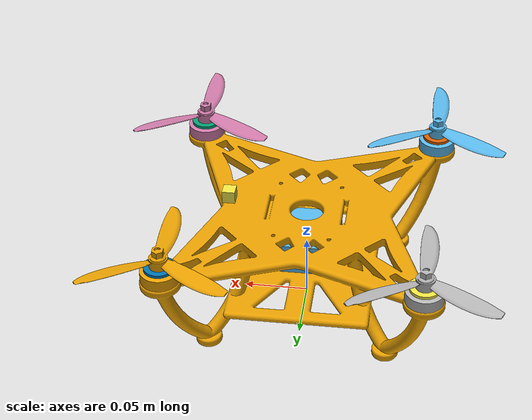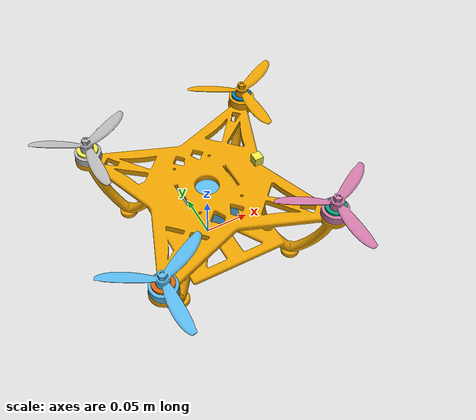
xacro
<?xml version="1.0"?>
<robot xmlns:xacro = "http://www.ros.org/wiki/xacro" name="quadrotor/quadrotor">

    <xacro:macro name="frame_inertia">
        <inertia ixx="1.231E-04" ixy="-3.560E-08" ixz="4.131E-07"
                 iyy="1.218E-04" iyz="4.210E-07"
                 izz="1.942E-04" />
    </xacro:macro>

    <xacro:macro name="propellers_holder_inertia">
        <inertia ixx="0.00" ixy="0.00" ixz="0.00"
                 iyy="0.00" iyz="0.00"
                 izz="0.00" />
    </xacro:macro>

    <xacro:macro name="propellers_inertia">
        <inertia ixx="3.962E-06" ixy="0.00" ixz="-8.233E-10"
                 iyy="6.100E-06" iyz="0.00"
                 izz="6.716E-06" />
    </xacro:macro>

    <xacro:macro name="box_inertia" params="m h w d">
        <inertia  ixx="${m*((h*h)+(d*d))/12}" ixy = "0" ixz = "0"
                iyy="${m*((w*w)+(d*d))/12}" iyz = "0"
                izz="${m*((h*h)+(w*w))/12}" />
    </xacro:macro>

    <xacro:property name="PI" value="3.1415926535897931" />
    <xacro:property name="frame_file_path" value="$(find quad_sim)/urdf/meshes/final_frame.stl" />
    <xacro:property name="propeller_base_file_path" value="$(find quad_sim)/urdf/meshes/KV2540_Motor_Base.stl" />
    <xacro:property name="propeller_file_path" value="$(find quad_sim)/urdf/meshes/KV2540_Motor_Propeller_holder.stl" />

    <xacro:macro name="propeller_holder_link" params="name">
        <link name="${name}">
            <inertial>
                <mass value="0.01696" />
                <origin xyz="0 0 0" rpy="0 0 0" />
                <xacro:propellers_holder_inertia />
            </inertial>
            <visual>
                <origin xyz="0 0 0" rpy="0 0 0" />
                <geometry>
                    <mesh filename="${propeller_base_file_path}" scale="0.001 0.001 0.001" />
                </geometry>
            </visual>
            <collision>
                <origin xyz="0 0 0" rpy="0 0 0" />
                <geometry>
                    <mesh filename="${propeller_base_file_path}" scale="0.001 0.001 0.001" />
                </geometry>
            </collision>
        </link>
    </xacro:macro>

    <xacro:macro name="propeller_link" params="name">
        <link name="${name}">
            <inertial>
                <mass value="0.01696" />
                <origin xyz="0 0 0" rpy="0 0 0" />
                <xacro:propellers_inertia />
            </inertial>
            <visual>
                <origin xyz="0 0 0" rpy="0 0 0" />
                <geometry>
                    <mesh filename="${propeller_file_path}" scale="0.001 0.001 0.001" />
                </geometry>
            </visual>
            <collision>
                <origin xyz="0 0 0" rpy="0 0 0" />
                <geometry>
                    <mesh filename="${propeller_file_path}" scale="0.001 0.001 0.001" />
                </geometry>
            </collision>
        </link>
    </xacro:macro>

    <link name="frame">
        <inertial>
            <mass value="0.06" />
            <origin xyz="0 0 0" rpy="0 0 0" />
            <xacro:box_inertia m="0.06" h="0.001" w="0.001" d="0.005" />
        </inertial>
        <visual>
            <origin xyz="-0.11 0.11 0" rpy="${PI/2} 0 0" />
            <geometry>
                <mesh filename="${frame_file_path}" scale="0.001 0.001 0.001" />
            </geometry>
        </visual>
        <collision>
            <origin xyz="-0.11 0.11 0" rpy="${PI/2} 0 0" />
            <geometry>
                <mesh filename="${frame_file_path}" scale="0.001 0.001 0.001" />
            </geometry>
        </collision>
    </link>

    <link name="obj_load">
        <inertial>
            <mass value="0.6" />
            <origin xyz="0 0 0" rpy="0 0 0" />
            <xacro:box_inertia m="0.6" h="0.05" w="0.025" d="0.05" />
        </inertial>
        <visual>
            <origin xyz="0 0 0" rpy="0 0 0" />
            <geometry>
                <box size="0.05 0.05 0.025" />
            </geometry>
        </visual>
        <collision>
            <origin xyz="0 0 0" rpy="0 0 0" />
            <geometry>
                <box size="0.05 0.05 0.025" />
            </geometry>
        </collision>
    </link>

    <joint name="body_load" type="fixed">
        <origin xyz="0 0 0.05" rpy="0 0 0" />
        <parent link="frame" />
        <child link="obj_load" />
    </joint>

    <xacro:propeller_holder_link name="propeller_holder1"/>

    <joint name="body_propeller1" type="fixed">
        <origin xyz="0.095 -0.095 0.08" rpy="${PI/2} 0 0" />
        <parent link="frame" />
        <child link="propeller_holder1" />
    </joint>

    <xacro:propeller_holder_link name="propeller_holder2" />

    <joint name="body_propeller2" type="fixed">
        <origin xyz="-0.095 0.095 0.08" rpy="${PI/2} 0 0" />
        <parent link="frame" />
        <child link="propeller_holder2" />
    </joint>

    <xacro:propeller_holder_link name="propeller_holder3" />

    <joint name="body_propeller3" type="fixed">
        <origin xyz="0.095 0.095 0.08" rpy="${PI/2} 0 0" />
        <parent link="frame" />
        <child link="propeller_holder3" />
    </joint>

    <xacro:propeller_holder_link name="propeller_holder4" />

    <joint name="body_propeller4" type="fixed">
        <origin xyz="-0.095 -0.095 0.08" rpy="${PI/2} 0 0" />
        <parent link="frame" />
        <child link="propeller_holder4" />
    </joint>

    <xacro:propeller_link name="propeller1"/>

    <joint name="propeller_base_propeller1" type="continuous">
        <origin xyz="0.095 -0.095 0.081" rpy="${PI/2} 0 0" />
        <parent link="frame" />
        <child link="propeller1" />
        <axis xyz="0 1 0" />
        <dynamics damping="0.0004" friction="0.00"/>
    </joint>

    <xacro:propeller_link name="propeller2" />

    <joint name="propeller_base_propeller2" type="continuous">
        <origin xyz="-0.095 0.095 0.081" rpy="${PI/2} 0 0" />
        <parent link="frame" />
        <child link="propeller2" />
        <axis xyz="0 1 0" />
        <dynamics damping="0.0004" friction="0.00"/>
    </joint>

    <xacro:propeller_link name="propeller3" />
1
    <joint name="propeller_base_propeller3" type="continuous">
        <origin xyz="0.095 0.095 0.081" rpy="${PI/2} 0 0" />
        <parent link="frame" />
        <child link="propeller3" />
        <axis xyz="0 1 0" />
        <dynamics damping="0.0004" friction="0.00"/>
    </joint>

    <xacro:propeller_link name="propeller4" />

    <joint name="propeller_base_propeller4" type="continuous">
        <origin xyz="-0.095 -0.095 0.081" rpy="${PI/2} 0 0" />
        <parent link="frame" />
        <child link="propeller4" />
        <axis xyz="0 1 0" />
        <dynamics damping="0.0004" friction="0.00"/>
    </joint>

    <gazebo>
        <plugin name="success_quad_velocity_control_plugins" filename="libsuccess_quad_velocity_control_plugins.so">
            <robotNamespace>quadrotor</robotNamespace>
            <propeller1_link>propeller1</propeller1_link>
            <propeller2_link>propeller2</propeller2_link>
            <propeller3_link>propeller3</propeller3_link>
            <propeller4_link>propeller4</propeller4_link>
            <topicName>throttle</topicName>
        </plugin>
    </gazebo>

    <link name="camera1_adj"></link>

    <link name='camera1_link'>

        <inertial name="camera1_inertia">
            <mass value="0.00000001" />
            <origin rpy="0 0 0" xyz="0 0 0"/>
            <xacro:box_inertia m="0.00000001" h="0.01" w="0.01" d="0.01" />
        </inertial>

        <collision name='collision'>
            <origin rpy="0 0 0" xyz="0 0 0"/>
            <geometry>
                <box size="0.01 0.01 0.01" />
            </geometry>
        </collision>

        <visual name='visual'>
            <origin rpy="0 0 0" xyz="0 0 0"/>
            <geometry>
                <box size="0.01 0.01 0.01" />
            </geometry>
        </visual>

    </link>

    <gazebo reference="camera1_link">
        <sensor type="camera" name="camera1">
        <update_rate>30.0</update_rate>
        <camera name="camera1">
            <horizontal_fov>1.0</horizontal_fov>
            <image>
            <width>1920</width>
            <height>1080</height>
            <format>R8G8B8</format>
            </image>
            <clip>
            <near>0.02</near>
            <far>300</far>
            </clip>
            <noise>
            <type>gaussian</type>
            <!-- Noise is sampled independently per pixel on each frame.
                That pixel's noise value is added to each of its color
                channels, which at that point lie in the range [0,1]. -->
            <mean>0.01</mean>
            <stddev>0.007</stddev>
            </noise>
        </camera>

        <plugin name="camera_controller" filename="libgazebo_ros_camera.so">
            <alwaysOn>true</alwaysOn>
            <updateRate>30.0</updateRate>
            <cameraName>camera1</cameraName>
            <imageTopicName>image_raw</imageTopicName>
            <cameraInfoTopicName>camera_info</cameraInfoTopicName>
            <frameName>camera1_link</frameName>
            <hackBaseline>1.57</hackBaseline>
            <distortionK1>0.0</distortionK1>
            <distortionK2>0.0</distortionK2>
            <distortionK3>0.0</distortionK3>
            <distortionT1>0.0</distortionT1>
            <distortionT2>0.0</distortionT2>
        </plugin>
        </sensor>
    </gazebo>

    <joint name="camera1_optical_joint" type="fixed">
        <origin xyz="0 0 0" rpy="0 0 0" />
        <parent link="camera1_adj" />
        <child link="camera1_link"/>
    </joint>

    <joint name="camera1_joint" type="fixed">
        <origin xyz="0.06 0 0.09" rpy="0 0 0"/>
        <parent link="frame"/>
        <child link="camera1_adj"/>
    </joint>

    <link name="imu_link" />

    <joint name="imu_joint" type="fixed">
        <origin xyz="0 0 0.09" rpy="0 0 0"/>
        <parent link="frame"/>
        <child link="imu_link"/>
    </joint>

    <gazebo reference="imu_link">
        <gravity>true</gravity>
        <sensor name="imu_sensor" type="imu">
            <always_on>true</always_on>
            <update_rate>100</update_rate>
            <visualize>true</visualize>
            <topic>__default_topic__</topic>
            <plugin filename="libgazebo_ros_imu_sensor.so" name="imu_plugin">
                <topicName>quadrotor/imu_data</topicName>
                <bodyName>imu_link</bodyName>
                <updateRateHZ>0.0</updateRateHZ>
                <gaussianNoise>0.0</gaussianNoise>
                <xyzOffset>0 0 0</xyzOffset>
                <rpyOffset>0 0 0</rpyOffset>
                <frameName>imu_link</frameName>
                <initialOrientationAsReference>true</initialOrientationAsReference>
            </plugin>
            <pose>0 0 0 0 0 0</pose>
        </sensor>
    </gazebo>

</robot>
